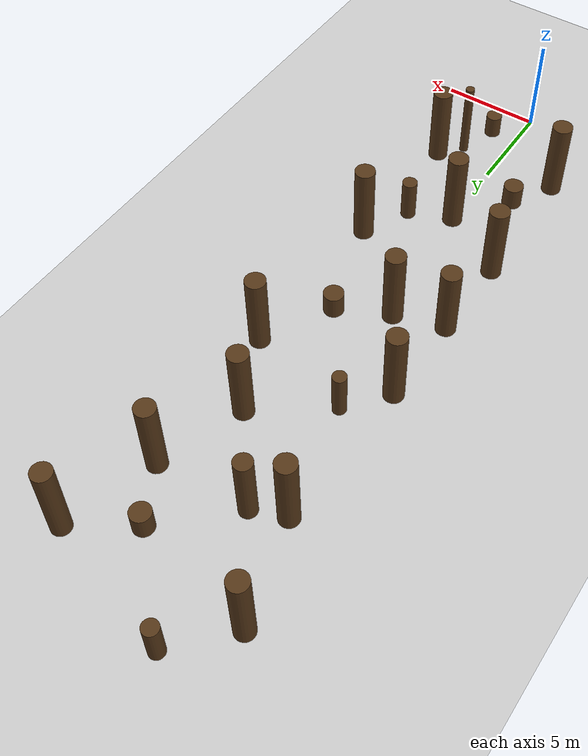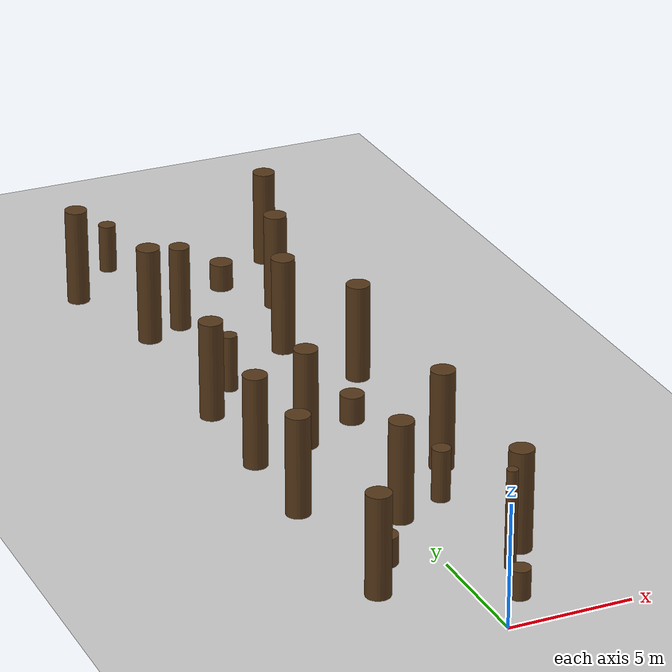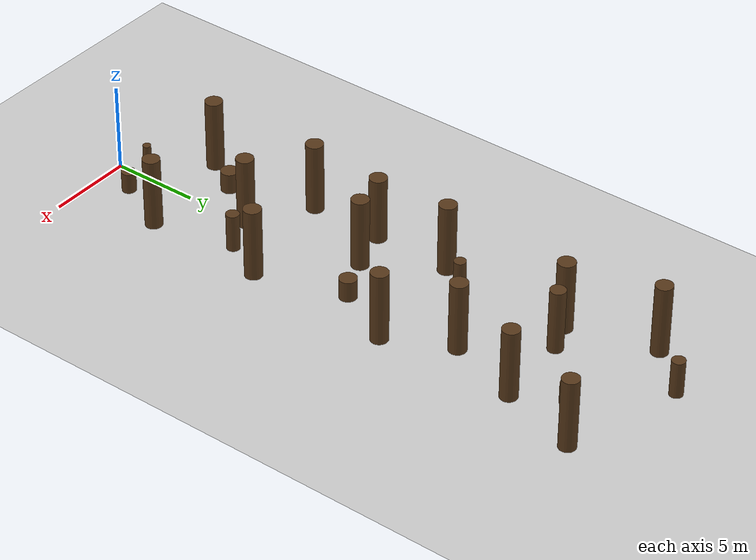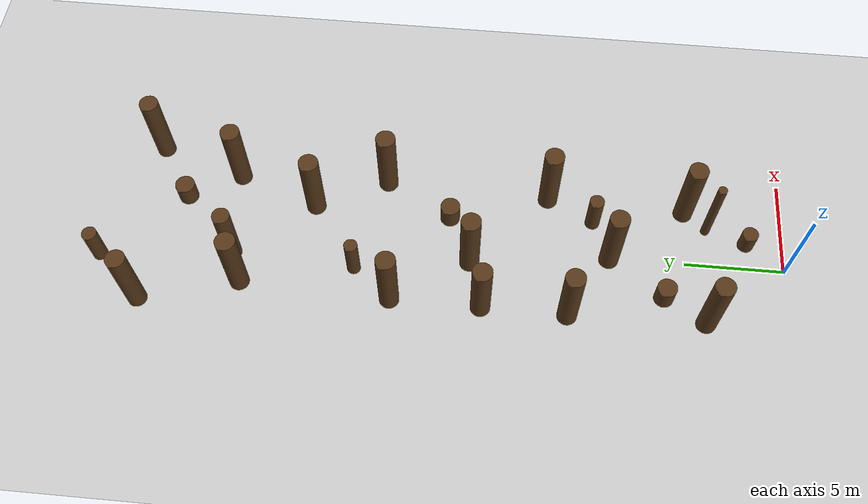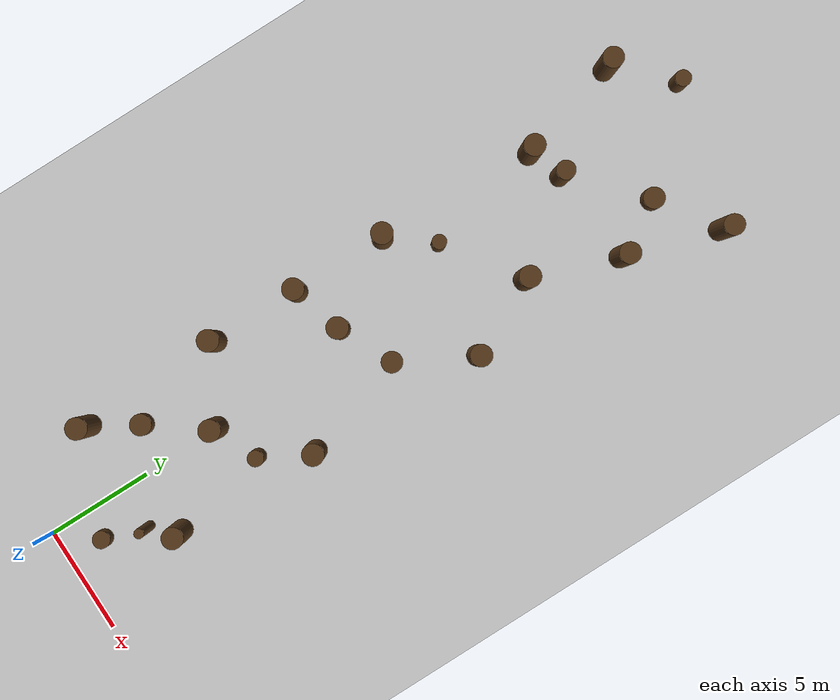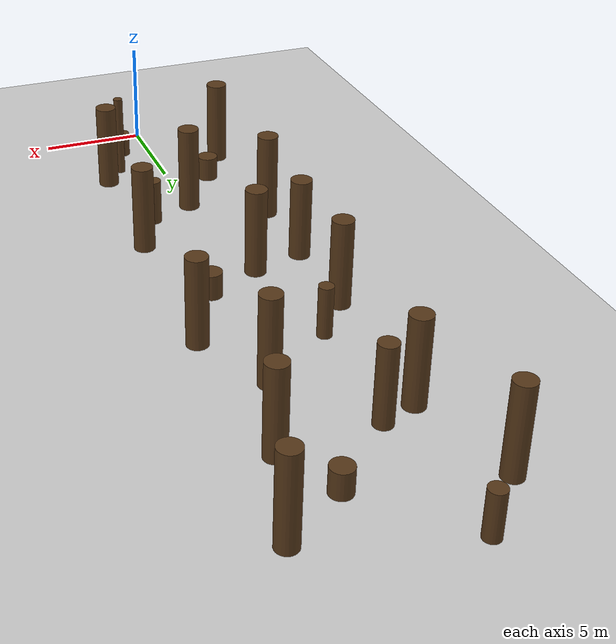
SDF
<?xml version="1.0"?>
<sdf version="1.6">
  <world name="default">
    <scene><ambient>0.7 0.72 0.68 1</ambient><background>0.42 0.50 0.44 1</background><shadows>true</shadows></scene>
    <include><uri>model://sun</uri></include>
    <include><uri>model://ground_plane</uri></include>
    <model name="tree_0">
      <static>true</static>
      <pose>1.408 1.869 0.600 0 0 0</pose>
      <link name="link">
        <collision name="c"><geometry><cylinder><radius>0.407</radius><length>1.200</length></cylinder></geometry></collision>
        <visual name="v"><geometry><cylinder><radius>0.407</radius><length>1.200</length></cylinder></geometry>
          <material><ambient>0.25 0.16 0.08 1</ambient><diffuse>0.34 0.22 0.10 1</diffuse></material></visual>
      </link>
    </model>
    <model name="tree_1">
      <static>true</static>
      <pose>-3.222 4.057 2.100 0 0 0</pose>
      <link name="link">
        <collision name="c"><geometry><cylinder><radius>0.500</radius><length>4.200</length></cylinder></geometry></collision>
        <visual name="v"><geometry><cylinder><radius>0.500</radius><length>4.200</length></cylinder></geometry>
          <material><ambient>0.25 0.16 0.08 1</ambient><diffuse>0.34 0.22 0.10 1</diffuse></material></visual>
      </link>
    </model>
    <model name="tree_2">
      <static>true</static>
      <pose>2.050 3.900 2.039 0 0 0</pose>
      <link name="link">
        <collision name="c"><geometry><cylinder><radius>0.226</radius><length>4.077</length></cylinder></geometry></collision>
        <visual name="v"><geometry><cylinder><radius>0.226</radius><length>4.077</length></cylinder></geometry>
          <material><ambient>0.25 0.16 0.08 1</ambient><diffuse>0.34 0.22 0.10 1</diffuse></material></visual>
      </link>
    </model>
    <model name="tree_3">
      <static>true</static>
      <pose>2.995 5.026 2.100 0 0 0</pose>
      <link name="link">
        <collision name="c"><geometry><cylinder><radius>0.492</radius><length>4.200</length></cylinder></geometry></collision>
        <visual name="v"><geometry><cylinder><radius>0.492</radius><length>4.200</length></cylinder></geometry>
          <material><ambient>0.25 0.16 0.08 1</ambient><diffuse>0.34 0.22 0.10 1</diffuse></material></visual>
      </link>
    </model>
    <model name="tree_4">
      <static>true</static>
      <pose>-1.989 6.100 0.600 0 0 0</pose>
      <link name="link">
        <collision name="c"><geometry><cylinder><radius>0.500</radius><length>1.200</length></cylinder></geometry></collision>
        <visual name="v"><geometry><cylinder><radius>0.500</radius><length>1.200</length></cylinder></geometry>
          <material><ambient>0.25 0.16 0.08 1</ambient><diffuse>0.34 0.22 0.10 1</diffuse></material></visual>
      </link>
    </model>
    <model name="tree_5">
      <static>true</static>
      <pose>-0.070 8.856 2.100 0 0 0</pose>
      <link name="link">
        <collision name="c"><geometry><cylinder><radius>0.500</radius><length>4.200</length></cylinder></geometry></collision>
        <visual name="v"><geometry><cylinder><radius>0.500</radius><length>4.200</length></cylinder></geometry>
          <material><ambient>0.25 0.16 0.08 1</ambient><diffuse>0.34 0.22 0.10 1</diffuse></material></visual>
      </link>
    </model>
    <model name="tree_6">
      <static>true</static>
      <pose>2.027 9.718 1.097 0 0 0</pose>
      <link name="link">
        <collision name="c"><geometry><cylinder><radius>0.374</radius><length>2.194</length></cylinder></geometry></collision>
        <visual name="v"><geometry><cylinder><radius>0.374</radius><length>2.194</length></cylinder></geometry>
          <material><ambient>0.25 0.16 0.08 1</ambient><diffuse>0.34 0.22 0.10 1</diffuse></material></visual>
      </link>
    </model>
    <model name="tree_7">
      <static>true</static>
      <pose>-3.388 10.884 2.100 0 0 0</pose>
      <link name="link">
        <collision name="c"><geometry><cylinder><radius>0.500</radius><length>4.200</length></cylinder></geometry></collision>
        <visual name="v"><geometry><cylinder><radius>0.500</radius><length>4.200</length></cylinder></geometry>
          <material><ambient>0.25 0.16 0.08 1</ambient><diffuse>0.34 0.22 0.10 1</diffuse></material></visual>
      </link>
    </model>
    <model name="tree_8">
      <static>true</static>
      <pose>3.204 12.074 2.100 0 0 0</pose>
      <link name="link">
        <collision name="c"><geometry><cylinder><radius>0.500</radius><length>4.200</length></cylinder></geometry></collision>
        <visual name="v"><geometry><cylinder><radius>0.500</radius><length>4.200</length></cylinder></geometry>
          <material><ambient>0.25 0.16 0.08 1</ambient><diffuse>0.34 0.22 0.10 1</diffuse></material></visual>
      </link>
    </model>
    <model name="tree_9">
      <static>true</static>
      <pose>-3.320 15.175 1.949 0 0 0</pose>
      <link name="link">
        <collision name="c"><geometry><cylinder><radius>0.500</radius><length>3.899</length></cylinder></geometry></collision>
        <visual name="v"><geometry><cylinder><radius>0.500</radius><length>3.899</length></cylinder></geometry>
          <material><ambient>0.25 0.16 0.08 1</ambient><diffuse>0.34 0.22 0.10 1</diffuse></material></visual>
      </link>
    </model>
    <model name="tree_10">
      <static>true</static>
      <pose>-0.865 15.900 2.100 0 0 0</pose>
      <link name="link">
        <collision name="c"><geometry><cylinder><radius>0.500</radius><length>4.200</length></cylinder></geometry></collision>
        <visual name="v"><geometry><cylinder><radius>0.500</radius><length>4.200</length></cylinder></geometry>
          <material><ambient>0.25 0.16 0.08 1</ambient><diffuse>0.34 0.22 0.10 1</diffuse></material></visual>
      </link>
    </model>
    <model name="tree_11">
      <static>true</static>
      <pose>1.664 17.091 0.600 0 0 0</pose>
      <link name="link">
        <collision name="c"><geometry><cylinder><radius>0.500</radius><length>1.200</length></cylinder></geometry></collision>
        <visual name="v"><geometry><cylinder><radius>0.500</radius><length>1.200</length></cylinder></geometry>
          <material><ambient>0.25 0.16 0.08 1</ambient><diffuse>0.34 0.22 0.10 1</diffuse></material></visual>
      </link>
    </model>
    <model name="tree_12">
      <static>true</static>
      <pose>-3.282 19.718 2.100 0 0 0</pose>
      <link name="link">
        <collision name="c"><geometry><cylinder><radius>0.500</radius><length>4.200</length></cylinder></geometry></collision>
        <visual name="v"><geometry><cylinder><radius>0.500</radius><length>4.200</length></cylinder></geometry>
          <material><ambient>0.25 0.16 0.08 1</ambient><diffuse>0.34 0.22 0.10 1</diffuse></material></visual>
      </link>
    </model>
    <model name="tree_13">
      <static>true</static>
      <pose>3.482 20.518 2.100 0 0 0</pose>
      <link name="link">
        <collision name="c"><geometry><cylinder><radius>0.500</radius><length>4.200</length></cylinder></geometry></collision>
        <visual name="v"><geometry><cylinder><radius>0.500</radius><length>4.200</length></cylinder></geometry>
          <material><ambient>0.25 0.16 0.08 1</ambient><diffuse>0.34 0.22 0.10 1</diffuse></material></visual>
      </link>
    </model>
    <model name="tree_14">
      <static>true</static>
      <pose>-1.700 21.700 1.212 0 0 0</pose>
      <link name="link">
        <collision name="c"><geometry><cylinder><radius>0.339</radius><length>2.423</length></cylinder></geometry></collision>
        <visual name="v"><geometry><cylinder><radius>0.339</radius><length>2.423</length></cylinder></geometry>
          <material><ambient>0.25 0.16 0.08 1</ambient><diffuse>0.34 0.22 0.10 1</diffuse></material></visual>
      </link>
    </model>
    <model name="tree_15">
      <static>true</static>
      <pose>1.732 24.126 2.100 0 0 0</pose>
      <link name="link">
        <collision name="c"><geometry><cylinder><radius>0.500</radius><length>4.200</length></cylinder></geometry></collision>
        <visual name="v"><geometry><cylinder><radius>0.500</radius><length>4.200</length></cylinder></geometry>
          <material><ambient>0.25 0.16 0.08 1</ambient><diffuse>0.34 0.22 0.10 1</diffuse></material></visual>
      </link>
    </model>
    <model name="tree_16">
      <static>true</static>
      <pose>-2.960 27.330 2.100 0 0 0</pose>
      <link name="link">
        <collision name="c"><geometry><cylinder><radius>0.500</radius><length>4.200</length></cylinder></geometry></collision>
        <visual name="v"><geometry><cylinder><radius>0.500</radius><length>4.200</length></cylinder></geometry>
          <material><ambient>0.25 0.16 0.08 1</ambient><diffuse>0.34 0.22 0.10 1</diffuse></material></visual>
      </link>
    </model>
    <model name="tree_17">
      <static>true</static>
      <pose>-1.340 27.953 1.853 0 0 0</pose>
      <link name="link">
        <collision name="c"><geometry><cylinder><radius>0.437</radius><length>3.706</length></cylinder></geometry></collision>
        <visual name="v"><geometry><cylinder><radius>0.437</radius><length>3.706</length></cylinder></geometry>
          <material><ambient>0.25 0.16 0.08 1</ambient><diffuse>0.34 0.22 0.10 1</diffuse></material></visual>
      </link>
    </model>
    <model name="tree_18">
      <static>true</static>
      <pose>3.184 28.321 2.100 0 0 0</pose>
      <link name="link">
        <collision name="c"><geometry><cylinder><radius>0.492</radius><length>4.200</length></cylinder></geometry></collision>
        <visual name="v"><geometry><cylinder><radius>0.492</radius><length>4.200</length></cylinder></geometry>
          <material><ambient>0.25 0.16 0.08 1</ambient><diffuse>0.34 0.22 0.10 1</diffuse></material></visual>
      </link>
    </model>
    <model name="tree_19">
      <static>true</static>
      <pose>1.748 30.924 0.600 0 0 0</pose>
      <link name="link">
        <collision name="c"><geometry><cylinder><radius>0.500</radius><length>1.200</length></cylinder></geometry></collision>
        <visual name="v"><geometry><cylinder><radius>0.500</radius><length>1.200</length></cylinder></geometry>
          <material><ambient>0.25 0.16 0.08 1</ambient><diffuse>0.34 0.22 0.10 1</diffuse></material></visual>
      </link>
    </model>
    <model name="tree_20">
      <static>true</static>
      <pose>-4.333 32.222 2.100 0 0 0</pose>
      <link name="link">
        <collision name="c"><geometry><cylinder><radius>0.479</radius><length>4.200</length></cylinder></geometry></collision>
        <visual name="v"><geometry><cylinder><radius>0.479</radius><length>4.200</length></cylinder></geometry>
          <material><ambient>0.25 0.16 0.08 1</ambient><diffuse>0.34 0.22 0.10 1</diffuse></material></visual>
      </link>
    </model>
    <model name="tree_21">
      <static>true</static>
      <pose>4.556 32.767 2.100 0 0 0</pose>
      <link name="link">
        <collision name="c"><geometry><cylinder><radius>0.479</radius><length>4.200</length></cylinder></geometry></collision>
        <visual name="v"><geometry><cylinder><radius>0.479</radius><length>4.200</length></cylinder></geometry>
          <material><ambient>0.25 0.16 0.08 1</ambient><diffuse>0.34 0.22 0.10 1</diffuse></material></visual>
      </link>
    </model>
    <model name="tree_22">
      <static>true</static>
      <pose>-2.045 34.700 1.063 0 0 0</pose>
      <link name="link">
        <collision name="c"><geometry><cylinder><radius>0.374</radius><length>2.126</length></cylinder></geometry></collision>
        <visual name="v"><geometry><cylinder><radius>0.374</radius><length>2.126</length></cylinder></geometry>
          <material><ambient>0.25 0.16 0.08 1</ambient><diffuse>0.34 0.22 0.10 1</diffuse></material></visual>
      </link>
    </model>
    <physics name="p" default="0" type="ode">
      <gravity>0 0 -9.8066</gravity>
      <max_step_size>0.004</max_step_size>
      <real_time_update_rate>250</real_time_update_rate>
    </physics>
  </world>
</sdf>
